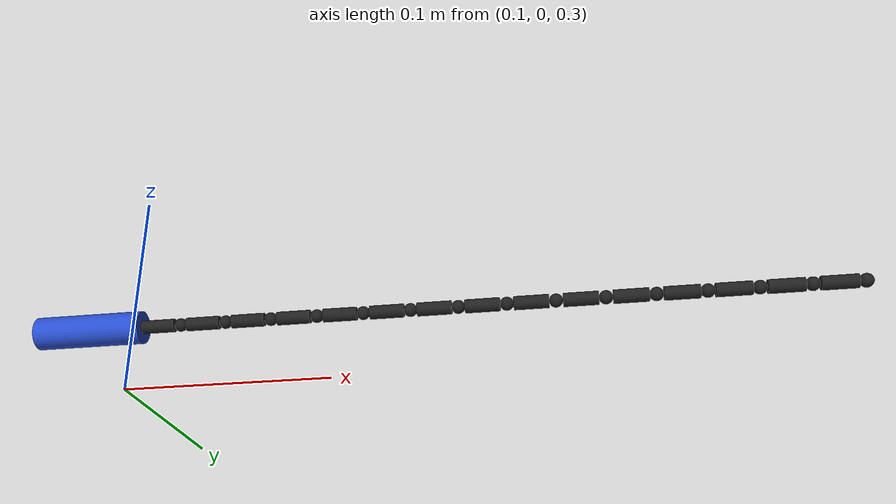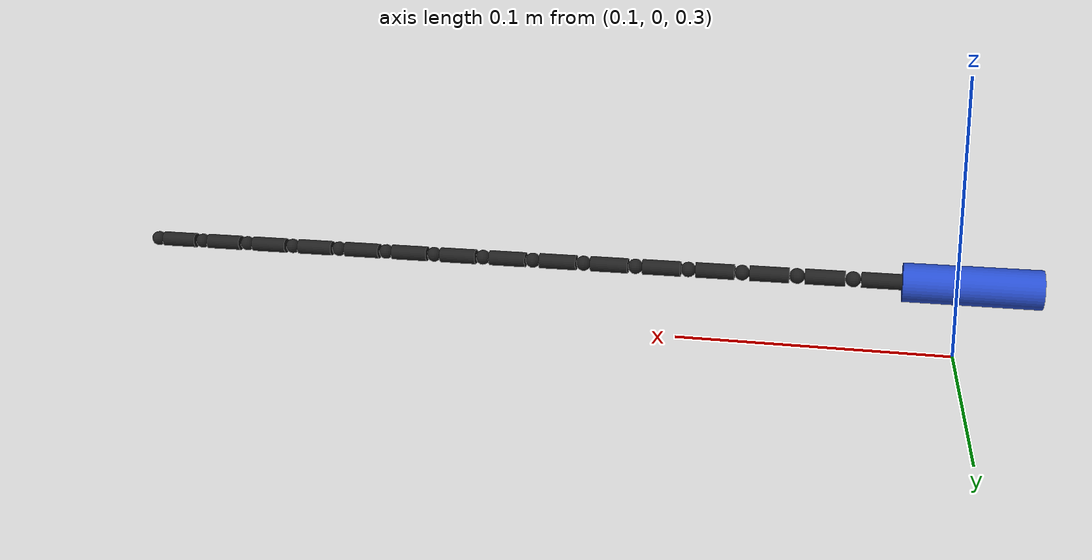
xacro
<?xml version="1.0"?>

<robot name="cable" xmlns:xacro="http://www.ros.org/wiki/xacro">
  <xacro:property name="radius" value="0.003"/>
  <xacro:property name="length" value="0.015"/>
  <xacro:property name="effort" value="0.000"/>
  <xacro:property name="velocity" value="10.0"/>
  <xacro:property name="damping" value="0.001"/>
  <xacro:property name="friction" value="0.0"/>

  <link name="world"/>

  <link name="bend_0">
    <inertial>
      <origin rpy="0.0 0.0 0.0" xyz="0.0 0.0 0.0"/>
      <mass value="0.001"/>
      <inertia ixx="0.001" ixy="0.0" ixz="0.0" iyy="0.001" iyz="0.0" izz="0.001"/>
    </inertial>
    <visual>
      <geometry>
        <sphere radius="${radius}"/>
      </geometry>
    </visual>
    <collision>
      <geometry>
        <sphere radius="${radius}"/>
      </geometry>
    </collision>
  </link>

  <link name="link_0">
    <inertial>
      <origin rpy="0.0 0.0 0.0" xyz="0.0 0.0 ${length/2 + radius}"/>
      <mass value="0.001"/>
      <inertia ixx="0.001" ixy="0.0" ixz="0.0" iyy="0.001" iyz="0.0" izz="0.001"/>
    </inertial>
    <visual>
      <origin rpy="0.0 0.0 0.0" xyz="0.0 0.0 ${length/2 + radius}"/>
      <geometry>
        <cylinder radius="${radius}" length="${length}"/>
      </geometry>
    </visual>
    <collision>
      <origin rpy="0.0 0.0 0.0" xyz="0.0 0.0 ${length/2 + radius}"/>
      <geometry>
        <cylinder radius="${radius}" length="${length}"/>
      </geometry>
    </collision>
  </link>

  <joint name="fixed" type="fixed">
    <parent link="world"/>
    <child link="bend_0"/>
    <origin xyz="0.43 -0.025 0.32" rpy="1.570796 0.0 -1.570796"/>
  </joint>

  <joint name="joint_0" type="revolute">
    <origin rpy="0.0 0.0 0.0" xyz="0.0 0.0 0.0"/>
    <parent link="bend_0"/>
    <child link="link_0"/>
    <axis xyz="1 0 0"/>
    <limit lower="-1.570796" upper="1.570796" effort="${effort}" velocity="${velocity}"/>
    <dynamics damping="${damping}" friction="${friction}"/>
  </joint>

  <gazebo reference="bend_0">
    <mu1>1.0</mu1>
    <mu2>1.0</mu2>
    <material>Gazebo/FlatBlack</material>
  </gazebo>

  <gazebo reference="link_0">
    <mu1>1.0</mu1>
    <mu2>1.0</mu2>
    <material>Gazebo/FlatBlack</material>
  </gazebo>

  <xacro:include filename="$(find boxbot_workspace)/urdf/cable.xacro"/>
  <xacro:cable_segment number="1" parent="0" radius="${radius}" length="${length}" effort="${effort}" velocity="${velocity}" damping="${damping}" friction="${friction}"/>
  <xacro:cable_segment number="2" parent="1" radius="${radius}" length="${length}" effort="${effort}" velocity="${velocity}" damping="${damping}" friction="${friction}"/>
  <xacro:cable_segment number="3" parent="2" radius="${radius}" length="${length}" effort="${effort}" velocity="${velocity}" damping="${damping}" friction="${friction}"/>
  <xacro:cable_segment number="4" parent="3" radius="${radius}" length="${length}" effort="${effort}" velocity="${velocity}" damping="${damping}" friction="${friction}"/>
  <xacro:cable_segment number="5" parent="4" radius="${radius}" length="${length}" effort="${effort}" velocity="${velocity}" damping="${damping}" friction="${friction}"/>
  <xacro:cable_segment number="6" parent="5" radius="${radius}" length="${length}" effort="${effort}" velocity="${velocity}" damping="${damping}" friction="${friction}"/>
  <xacro:cable_segment number="7" parent="6" radius="${radius}" length="${length}" effort="${effort}" velocity="${velocity}" damping="${damping}" friction="${friction}"/>
  <xacro:cable_segment number="8" parent="7" radius="${radius}" length="${length}" effort="${effort}" velocity="${velocity}" damping="${damping}" friction="${friction}"/>
  <xacro:cable_segment number="9" parent="8" radius="${radius}" length="${length}" effort="${effort}" velocity="${velocity}" damping="${damping}" friction="${friction}"/>
  <xacro:cable_segment number="10" parent="9" radius="${radius}" length="${length}" effort="${effort}" velocity="${velocity}" damping="${damping}" friction="${friction}"/>
  <xacro:cable_segment number="11" parent="10" radius="${radius}" length="${length}" effort="${effort}" velocity="${velocity}" damping="${damping}" friction="${friction}"/>
  <xacro:cable_segment number="12" parent="11" radius="${radius}" length="${length}" effort="${effort}" velocity="${velocity}" damping="${damping}" friction="${friction}"/>
  <xacro:cable_segment number="13" parent="12" radius="${radius}" length="${length}" effort="${effort}" velocity="${velocity}" damping="${damping}" friction="${friction}"/>
  <xacro:cable_segment number="14" parent="13" radius="${radius}" length="${length}" effort="${effort}" velocity="${velocity}" damping="${damping}" friction="${friction}"/>

  <link name="plug">
    <inertial>
      <origin rpy="0.0 0.0 0.0" xyz="0.0 0.0 ${length/2}"/>
      <mass value="0.01"/>
      <inertia ixx="0.001" ixy="0.0" ixz="0.0" iyy="0.001" iyz="0.0" izz="0.001"/>
    </inertial>
    <visual>
      <origin rpy="0.0 0.0 0.0" xyz="0.0 0.0 ${length/2}"/>
      <geometry>
        <mesh filename="package://boxbot_workspace/meshes/plug.stl" scale="0.001 0.001 0.001"/>
      </geometry>
    </visual>
    <collision>
      <origin rpy="0.0 0.0 0.0" xyz="0.0 0.0 ${length/2}"/>
      <geometry>
        <mesh filename="package://boxbot_workspace/meshes/plug.stl" scale="0.001 0.001 0.001"/>
      </geometry>
    </collision>
  </link>

  <joint name="plug_joint" type="fixed">
    <origin rpy="1.570796 0.0 0.0" xyz="0.0 0.0075 ${length + radius}"/>
    <parent link="link_14"/>
    <child link="plug"/>
  </joint>

  <gazebo reference="plug">
    <mu1>1.0</mu1>
    <mu2>1.0</mu2>
    <material>Gazebo/Blue</material>
  </gazebo>

</robot>

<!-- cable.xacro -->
<robot xmlns:xacro="http://ros.org/wiki/xacro">

  <xacro:macro name="cable_segment" params="number parent radius length effort velocity damping friction">

    <link name="bend_${number}">
      <inertial>
        <origin rpy="0.0 0.0 0.0" xyz="0.0 0.0 0.0"/>
        <mass value="0.001"/>
        <inertia ixx="0.001" ixy="0.0" ixz="0.0" iyy="0.001" iyz="0.0" izz="0.001"/>
      </inertial>
      <visual>
        <geometry>
          <sphere radius="${radius}"/>
        </geometry>
      </visual>
      <collision>
        <geometry>
          <sphere radius="${radius}"/>
        </geometry>
      </collision>
    </link>

    <link name="link_${number}">
      <inertial>
        <origin rpy="0.0 0.0 0.0" xyz="0.0 0.0 ${length/2 + radius}"/>
        <mass value="0.001"/>
        <inertia ixx="0.001" ixy="0.0" ixz="0.0" iyy="0.001" iyz="0.0" izz="0.001"/>
      </inertial>
      <visual>
        <origin rpy="0.0 0.0 0.0" xyz="0.0 0.0 ${length/2 + radius}"/>
        <geometry>
          <cylinder radius="${radius}" length="${length}"/>
        </geometry>
      </visual>
      <collision>
        <origin rpy="0.0 0.0 0.0" xyz="0.0 0.0 ${length/2 + radius}"/>
        <geometry>
          <cylinder radius="${radius}" length="${length}"/>
        </geometry>
      </collision>
    </link>

    <joint name="${parent}_to_${number}" type="revolute">
      <origin rpy="0.0 0.0 0.0" xyz="0.0 0.0 ${length + 2*radius}"/>
      <parent link="link_${parent}"/>
      <child link="bend_${number}"/>
      <axis xyz="0 1 0"/>
      <limit lower="-0.523599" upper="0.523599" effort="${effort}" velocity="${velocity}"/>
      <dynamics damping="${damping}" friction="${friction}"/>
    </joint>

    <joint name="joint_${number}" type="revolute">
      <origin rpy="0.0 0.0 0.0" xyz="0.0 0.0 0.0"/>
      <parent link="bend_${number}"/>
      <child link="link_${number}"/>
      <axis xyz="1 0 0"/>
      <limit lower="-1.570796" upper="1.570796" effort="${effort}" velocity="${velocity}"/>
      <dynamics damping="${damping}" friction="${friction}"/>
    </joint>

  <gazebo reference="bend_${number}">
    <mu1>0.6</mu1>
    <mu2>0.6</mu2>
    <material>Gazebo/FlatBlack</material>
  </gazebo>

  <gazebo reference="link_${number}">
    <mu1>0.6</mu1>
    <mu2>0.6</mu2>
    <material>Gazebo/FlatBlack</material>
  </gazebo>

  </xacro:macro>
</robot>
